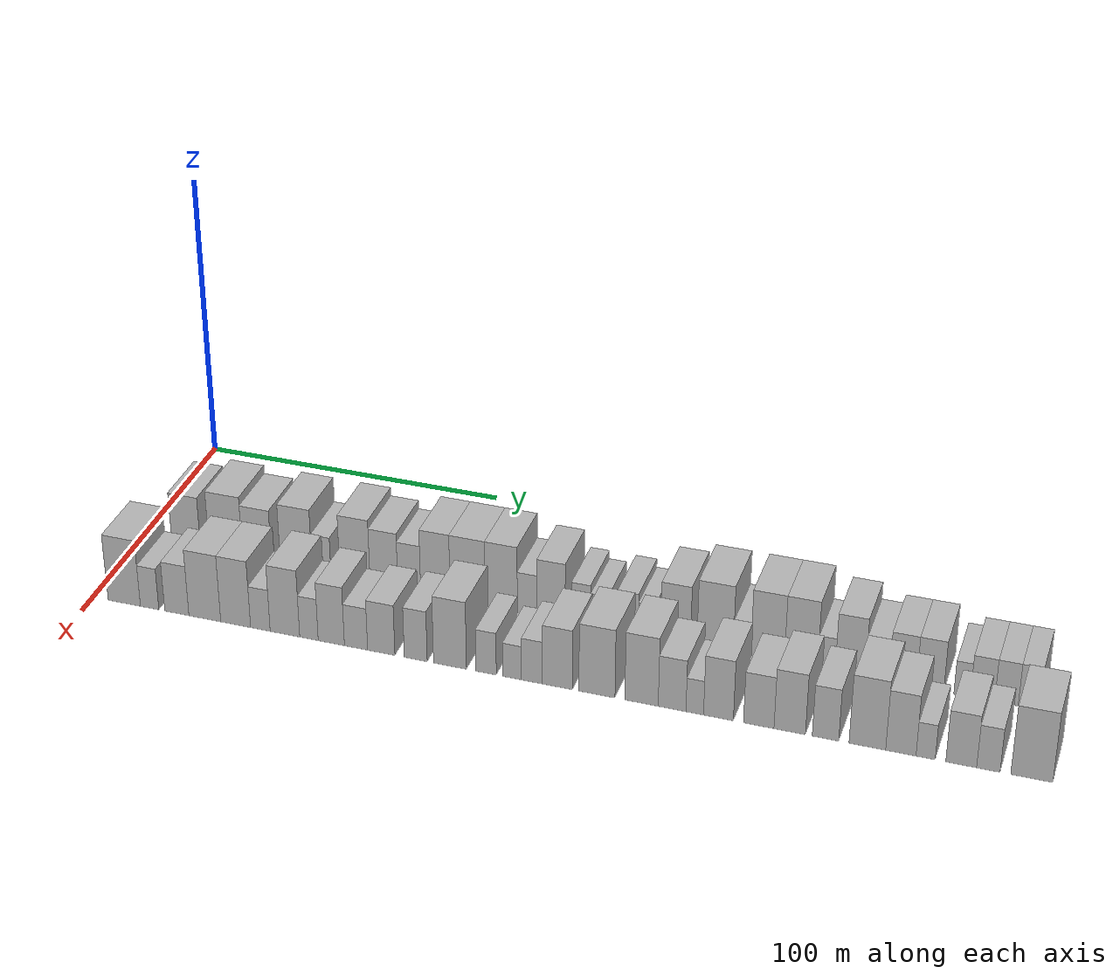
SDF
<sdf version="1.6">
 <world name="default">
  <model name="building_31">
   <static>1</static>
   <pose>50.0000 16.7723 0 0.000000 0.000000 0.000000</pose>
   <link name="link">
    <pose>0 0 10.50 0 0 0</pose>
    <collision name="collision"><geometry><box><size>20.0000 9.9033 21.0000</size></box></geometry></collision>
    <visual name="visual">
     <cast_shadows>0</cast_shadows>
     <geometry><box><size>20.0000 9.9033 21.0000</size></box></geometry>
     <material>
      <script>
       <uri>model://HANNAS_wall/materials/scripts</uri>
       <uri>model://HANNAS_wall/materials/textures</uri>
       <name>vrc/HANNAS_wall</name>
      </script>
     </material>
    </visual>
   </link>
  </model>
  <model name="building_32">
   <static>1</static>
   <pose>50.0000 30.4309 0 0.000000 0.000000 0.000000</pose>
   <link name="link">
    <pose>0 0 12.00 0 0 0</pose>
    <collision name="collision"><geometry><box><size>20.0000 11.4141 24.0000</size></box></geometry></collision>
    <visual name="visual">
     <cast_shadows>0</cast_shadows>
     <geometry><box><size>20.0000 11.4141 24.0000</size></box></geometry>
     <material>
      <script>
       <uri>model://HANNAS_wall/materials/scripts</uri>
       <uri>model://HANNAS_wall/materials/textures</uri>
       <name>vrc/HANNAS_wall</name>
      </script>
     </material>
    </visual>
   </link>
  </model>
  <model name="building_33">
   <static>1</static>
   <pose>50.0000 41.0678 0 0.000000 0.000000 0.000000</pose>
   <link name="link">
    <pose>0 0 10.50 0 0 0</pose>
    <collision name="collision"><geometry><box><size>20.0000 9.8596 21.0000</size></box></geometry></collision>
    <visual name="visual">
     <cast_shadows>0</cast_shadows>
     <geometry><box><size>20.0000 9.8596 21.0000</size></box></geometry>
     <material>
      <script>
       <uri>model://HANNAS_wall/materials/scripts</uri>
       <uri>model://HANNAS_wall/materials/textures</uri>
       <name>vrc/HANNAS_wall</name>
      </script>
     </material>
    </visual>
   </link>
  </model>
  <model name="building_34">
   <static>1</static>
   <pose>50.0000 54.3550 0 0.000000 0.000000 0.000000</pose>
   <link name="link">
    <pose>0 0 12.00 0 0 0</pose>
    <collision name="collision"><geometry><box><size>20.0000 10.7149 24.0000</size></box></geometry></collision>
    <visual name="visual">
     <cast_shadows>0</cast_shadows>
     <geometry><box><size>20.0000 10.7149 24.0000</size></box></geometry>
     <material>
      <script>
       <uri>model://HANNAS_wall/materials/scripts</uri>
       <uri>model://HANNAS_wall/materials/textures</uri>
       <name>vrc/HANNAS_wall</name>
      </script>
     </material>
    </visual>
   </link>
  </model>
  <model name="building_35">
   <static>1</static>
   <pose>50.0000 62.8601 0 0.000000 0.000000 0.000000</pose>
   <link name="link">
    <pose>0 0 7.50 0 0 0</pose>
    <collision name="collision"><geometry><box><size>20.0000 6.2953 15.0000</size></box></geometry></collision>
    <visual name="visual">
     <cast_shadows>0</cast_shadows>
     <geometry><box><size>20.0000 6.2953 15.0000</size></box></geometry>
     <material>
      <script>
       <uri>model://HANNAS_wall/materials/scripts</uri>
       <uri>model://HANNAS_wall/materials/textures</uri>
       <name>vrc/HANNAS_wall</name>
      </script>
     </material>
    </visual>
   </link>
  </model>
  <model name="building_36">
   <static>1</static>
   <pose>50.0000 74.0234 0 0.000000 0.000000 0.000000</pose>
   <link name="link">
    <pose>0 0 12.00 0 0 0</pose>
    <collision name="collision"><geometry><box><size>20.0000 10.0312 24.0000</size></box></geometry></collision>
    <visual name="visual">
     <cast_shadows>0</cast_shadows>
     <geometry><box><size>20.0000 10.0312 24.0000</size></box></geometry>
     <material>
      <script>
       <uri>model://HANNAS_wall/materials/scripts</uri>
       <uri>model://HANNAS_wall/materials/textures</uri>
       <name>vrc/HANNAS_wall</name>
      </script>
     </material>
    </visual>
   </link>
  </model>
  <model name="building_37">
   <static>1</static>
   <pose>50.0000 83.6397 0 0.000000 0.000000 0.000000</pose>
   <link name="link">
    <pose>0 0 10.50 0 0 0</pose>
    <collision name="collision"><geometry><box><size>20.0000 9.2015 21.0000</size></box></geometry></collision>
    <visual name="visual">
     <cast_shadows>0</cast_shadows>
     <geometry><box><size>20.0000 9.2015 21.0000</size></box></geometry>
     <material>
      <script>
       <uri>model://HANNAS_wall/materials/scripts</uri>
       <uri>model://HANNAS_wall/materials/textures</uri>
       <name>vrc/HANNAS_wall</name>
      </script>
     </material>
    </visual>
   </link>
  </model>
  <model name="building_38">
   <static>1</static>
   <pose>50.0000 92.0039 0 0.000000 0.000000 0.000000</pose>
   <link name="link">
    <pose>0 0 9.00 0 0 0</pose>
    <collision name="collision"><geometry><box><size>20.0000 7.5267 18.0000</size></box></geometry></collision>
    <visual name="visual">
     <cast_shadows>0</cast_shadows>
     <geometry><box><size>20.0000 7.5267 18.0000</size></box></geometry>
     <material>
      <script>
       <uri>model://HANNAS_wall/materials/scripts</uri>
       <uri>model://HANNAS_wall/materials/textures</uri>
       <name>vrc/HANNAS_wall</name>
      </script>
     </material>
    </visual>
   </link>
  </model>
  <model name="building_39">
   <static>1</static>
   <pose>50.0000 100.5890 0 0.000000 0.000000 0.000000</pose>
   <link name="link">
    <pose>0 0 12.00 0 0 0</pose>
    <collision name="collision"><geometry><box><size>20.0000 9.6436 24.0000</size></box></geometry></collision>
    <visual name="visual">
     <cast_shadows>0</cast_shadows>
     <geometry><box><size>20.0000 9.6436 24.0000</size></box></geometry>
     <material>
      <script>
       <uri>model://HANNAS_wall/materials/scripts</uri>
       <uri>model://HANNAS_wall/materials/textures</uri>
       <name>vrc/HANNAS_wall</name>
      </script>
     </material>
    </visual>
   </link>
  </model>
  <model name="building_40">
   <static>1</static>
   <pose>50.0000 111.1085 0 0.000000 0.000000 0.000000</pose>
   <link name="link">
    <pose>0 0 12.00 0 0 0</pose>
    <collision name="collision"><geometry><box><size>20.0000 11.3954 24.0000</size></box></geometry></collision>
    <visual name="visual">
     <cast_shadows>0</cast_shadows>
     <geometry><box><size>20.0000 11.3954 24.0000</size></box></geometry>
     <material>
      <script>
       <uri>model://HANNAS_wall/materials/scripts</uri>
       <uri>model://HANNAS_wall/materials/textures</uri>
       <name>vrc/HANNAS_wall</name>
      </script>
     </material>
    </visual>
   </link>
  </model>
  <model name="building_41">
   <static>1</static>
   <pose>50.0000 122.0105 0 0.000000 0.000000 0.000000</pose>
   <link name="link">
    <pose>0 0 12.00 0 0 0</pose>
    <collision name="collision"><geometry><box><size>20.0000 10.4088 24.0000</size></box></geometry></collision>
    <visual name="visual">
     <cast_shadows>0</cast_shadows>
     <geometry><box><size>20.0000 10.4088 24.0000</size></box></geometry>
     <material>
      <script>
       <uri>model://HANNAS_wall/materials/scripts</uri>
       <uri>model://HANNAS_wall/materials/textures</uri>
       <name>vrc/HANNAS_wall</name>
      </script>
     </material>
    </visual>
   </link>
  </model>
  <model name="building_42">
   <static>1</static>
   <pose>50.0000 130.3506 0 0.000000 0.000000 0.000000</pose>
   <link name="link">
    <pose>0 0 7.50 0 0 0</pose>
    <collision name="collision"><geometry><box><size>20.0000 6.2713 15.0000</size></box></geometry></collision>
    <visual name="visual">
     <cast_shadows>0</cast_shadows>
     <geometry><box><size>20.0000 6.2713 15.0000</size></box></geometry>
     <material>
      <script>
       <uri>model://HANNAS_wall/materials/scripts</uri>
       <uri>model://HANNAS_wall/materials/textures</uri>
       <name>vrc/HANNAS_wall</name>
      </script>
     </material>
    </visual>
   </link>
  </model>
  <model name="building_43">
   <static>1</static>
   <pose>50.0000 137.9851 0 0.000000 0.000000 0.000000</pose>
   <link name="link">
    <pose>0 0 10.50 0 0 0</pose>
    <collision name="collision"><geometry><box><size>20.0000 8.9977 21.0000</size></box></geometry></collision>
    <visual name="visual">
     <cast_shadows>0</cast_shadows>
     <geometry><box><size>20.0000 8.9977 21.0000</size></box></geometry>
     <material>
      <script>
       <uri>model://HANNAS_wall/materials/scripts</uri>
       <uri>model://HANNAS_wall/materials/textures</uri>
       <name>vrc/HANNAS_wall</name>
      </script>
     </material>
    </visual>
   </link>
  </model>
  <model name="building_44">
   <static>1</static>
   <pose>50.0000 147.4959 0 0.000000 0.000000 0.000000</pose>
   <link name="link">
    <pose>0 0 7.50 0 0 0</pose>
    <collision name="collision"><geometry><box><size>20.0000 6.0239 15.0000</size></box></geometry></collision>
    <visual name="visual">
     <cast_shadows>0</cast_shadows>
     <geometry><box><size>20.0000 6.0239 15.0000</size></box></geometry>
     <material>
      <script>
       <uri>model://HANNAS_wall/materials/scripts</uri>
       <uri>model://HANNAS_wall/materials/textures</uri>
       <name>vrc/HANNAS_wall</name>
      </script>
     </material>
    </visual>
   </link>
  </model>
  <model name="building_45">
   <static>1</static>
   <pose>50.0000 153.2212 0 0.000000 0.000000 0.000000</pose>
   <link name="link">
    <pose>0 0 6.00 0 0 0</pose>
    <collision name="collision"><geometry><box><size>20.0000 5.4267 12.0000</size></box></geometry></collision>
    <visual name="visual">
     <cast_shadows>0</cast_shadows>
     <geometry><box><size>20.0000 5.4267 12.0000</size></box></geometry>
     <material>
      <script>
       <uri>model://HANNAS_wall/materials/scripts</uri>
       <uri>model://HANNAS_wall/materials/textures</uri>
       <name>vrc/HANNAS_wall</name>
      </script>
     </material>
    </visual>
   </link>
  </model>
  <model name="building_46">
   <static>1</static>
   <pose>50.0000 162.2560 0 0.000000 0.000000 0.000000</pose>
   <link name="link">
    <pose>0 0 7.50 0 0 0</pose>
    <collision name="collision"><geometry><box><size>20.0000 6.6430 15.0000</size></box></geometry></collision>
    <visual name="visual">
     <cast_shadows>0</cast_shadows>
     <geometry><box><size>20.0000 6.6430 15.0000</size></box></geometry>
     <material>
      <script>
       <uri>model://HANNAS_wall/materials/scripts</uri>
       <uri>model://HANNAS_wall/materials/textures</uri>
       <name>vrc/HANNAS_wall</name>
      </script>
     </material>
    </visual>
   </link>
  </model>
  <model name="building_47">
   <static>1</static>
   <pose>50.0000 168.0989 0 0.000000 0.000000 0.000000</pose>
   <link name="link">
    <pose>0 0 6.00 0 0 0</pose>
    <collision name="collision"><geometry><box><size>20.0000 5.0428 12.0000</size></box></geometry></collision>
    <visual name="visual">
     <cast_shadows>0</cast_shadows>
     <geometry><box><size>20.0000 5.0428 12.0000</size></box></geometry>
     <material>
      <script>
       <uri>model://HANNAS_wall/materials/scripts</uri>
       <uri>model://HANNAS_wall/materials/textures</uri>
       <name>vrc/HANNAS_wall</name>
      </script>
     </material>
    </visual>
   </link>
  </model>
  <model name="building_48">
   <static>1</static>
   <pose>50.0000 177.2669 0 0.000000 0.000000 0.000000</pose>
   <link name="link">
    <pose>0 0 10.50 0 0 0</pose>
    <collision name="collision"><geometry><box><size>20.0000 9.2932 21.0000</size></box></geometry></collision>
    <visual name="visual">
     <cast_shadows>0</cast_shadows>
     <geometry><box><size>20.0000 9.2932 21.0000</size></box></geometry>
     <material>
      <script>
       <uri>model://HANNAS_wall/materials/scripts</uri>
       <uri>model://HANNAS_wall/materials/textures</uri>
       <name>vrc/HANNAS_wall</name>
      </script>
     </material>
    </visual>
   </link>
  </model>
  <model name="building_49">
   <static>1</static>
   <pose>50.0000 189.5027 0 0.000000 0.000000 0.000000</pose>
   <link name="link">
    <pose>0 0 12.00 0 0 0</pose>
    <collision name="collision"><geometry><box><size>20.0000 11.1784 24.0000</size></box></geometry></collision>
    <visual name="visual">
     <cast_shadows>0</cast_shadows>
     <geometry><box><size>20.0000 11.1784 24.0000</size></box></geometry>
     <material>
      <script>
       <uri>model://HANNAS_wall/materials/scripts</uri>
       <uri>model://HANNAS_wall/materials/textures</uri>
       <name>vrc/HANNAS_wall</name>
      </script>
     </material>
    </visual>
   </link>
  </model>
  <model name="building_50">
   <static>1</static>
   <pose>50.0000 197.7847 0 0.000000 0.000000 0.000000</pose>
   <link name="link">
    <pose>0 0 6.00 0 0 0</pose>
    <collision name="collision"><geometry><box><size>20.0000 5.3856 12.0000</size></box></geometry></collision>
    <visual name="visual">
     <cast_shadows>0</cast_shadows>
     <geometry><box><size>20.0000 5.3856 12.0000</size></box></geometry>
     <material>
      <script>
       <uri>model://HANNAS_wall/materials/scripts</uri>
       <uri>model://HANNAS_wall/materials/textures</uri>
       <name>vrc/HANNAS_wall</name>
      </script>
     </material>
    </visual>
   </link>
  </model>
  <model name="building_51">
   <static>1</static>
   <pose>50.0000 205.6232 0 0.000000 0.000000 0.000000</pose>
   <link name="link">
    <pose>0 0 12.00 0 0 0</pose>
    <collision name="collision"><geometry><box><size>20.0000 10.2915 24.0000</size></box></geometry></collision>
    <visual name="visual">
     <cast_shadows>0</cast_shadows>
     <geometry><box><size>20.0000 10.2915 24.0000</size></box></geometry>
     <material>
      <script>
       <uri>model://HANNAS_wall/materials/scripts</uri>
       <uri>model://HANNAS_wall/materials/textures</uri>
       <name>vrc/HANNAS_wall</name>
      </script>
     </material>
    </visual>
   </link>
  </model>
  <model name="building_52">
   <static>1</static>
   <pose>50.0000 215.8023 0 0.000000 0.000000 0.000000</pose>
   <link name="link">
    <pose>0 0 12.00 0 0 0</pose>
    <collision name="collision"><geometry><box><size>20.0000 10.0666 24.0000</size></box></geometry></collision>
    <visual name="visual">
     <cast_shadows>0</cast_shadows>
     <geometry><box><size>20.0000 10.0666 24.0000</size></box></geometry>
     <material>
      <script>
       <uri>model://HANNAS_wall/materials/scripts</uri>
       <uri>model://HANNAS_wall/materials/textures</uri>
       <name>vrc/HANNAS_wall</name>
      </script>
     </material>
    </visual>
   </link>
  </model>
  <model name="building_53">
   <static>1</static>
   <pose>50.0000 223.4891 0 0.000000 0.000000 0.000000</pose>
   <link name="link">
    <pose>0 0 6.00 0 0 0</pose>
    <collision name="collision"><geometry><box><size>20.0000 5.3071 12.0000</size></box></geometry></collision>
    <visual name="visual">
     <cast_shadows>0</cast_shadows>
     <geometry><box><size>20.0000 5.3071 12.0000</size></box></geometry>
     <material>
      <script>
       <uri>model://HANNAS_wall/materials/scripts</uri>
       <uri>model://HANNAS_wall/materials/textures</uri>
       <name>vrc/HANNAS_wall</name>
      </script>
     </material>
    </visual>
   </link>
  </model>
  <model name="building_54">
   <static>1</static>
   <pose>50.0000 230.6650 0 0.000000 0.000000 0.000000</pose>
   <link name="link">
    <pose>0 0 10.50 0 0 0</pose>
    <collision name="collision"><geometry><box><size>20.0000 9.0448 21.0000</size></box></geometry></collision>
    <visual name="visual">
     <cast_shadows>0</cast_shadows>
     <geometry><box><size>20.0000 9.0448 21.0000</size></box></geometry>
     <material>
      <script>
       <uri>model://HANNAS_wall/materials/scripts</uri>
       <uri>model://HANNAS_wall/materials/textures</uri>
       <name>vrc/HANNAS_wall</name>
      </script>
     </material>
    </visual>
   </link>
  </model>
  <model name="building_55">
   <static>1</static>
   <pose>50.0000 238.7319 0 0.000000 0.000000 0.000000</pose>
   <link name="link">
    <pose>0 0 7.50 0 0 0</pose>
    <collision name="collision"><geometry><box><size>20.0000 7.0890 15.0000</size></box></geometry></collision>
    <visual name="visual">
     <cast_shadows>0</cast_shadows>
     <geometry><box><size>20.0000 7.0890 15.0000</size></box></geometry>
     <material>
      <script>
       <uri>model://HANNAS_wall/materials/scripts</uri>
       <uri>model://HANNAS_wall/materials/textures</uri>
       <name>vrc/HANNAS_wall</name>
      </script>
     </material>
    </visual>
   </link>
  </model>
  <model name="building_56">
   <static>1</static>
   <pose>50.0000 246.3394 0 0.000000 0.000000 0.000000</pose>
   <link name="link">
    <pose>0 0 9.00 0 0 0</pose>
    <collision name="collision"><geometry><box><size>20.0000 8.1259 18.0000</size></box></geometry></collision>
    <visual name="visual">
     <cast_shadows>0</cast_shadows>
     <geometry><box><size>20.0000 8.1259 18.0000</size></box></geometry>
     <material>
      <script>
       <uri>model://HANNAS_wall/materials/scripts</uri>
       <uri>model://HANNAS_wall/materials/textures</uri>
       <name>vrc/HANNAS_wall</name>
      </script>
     </material>
    </visual>
   </link>
  </model>
  <model name="building_57">
   <static>1</static>
   <pose>50.0000 254.4463 0 0.000000 0.000000 0.000000</pose>
   <link name="link">
    <pose>0 0 9.00 0 0 0</pose>
    <collision name="collision"><geometry><box><size>20.0000 8.0880 18.0000</size></box></geometry></collision>
    <visual name="visual">
     <cast_shadows>0</cast_shadows>
     <geometry><box><size>20.0000 8.0880 18.0000</size></box></geometry>
     <material>
      <script>
       <uri>model://HANNAS_wall/materials/scripts</uri>
       <uri>model://HANNAS_wall/materials/textures</uri>
       <name>vrc/HANNAS_wall</name>
      </script>
     </material>
    </visual>
   </link>
  </model>
  <model name="building_58">
   <static>1</static>
   <pose>50.0000 263.9128 0 0.000000 0.000000 0.000000</pose>
   <link name="link">
    <pose>0 0 6.00 0 0 0</pose>
    <collision name="collision"><geometry><box><size>20.0000 4.8451 12.0000</size></box></geometry></collision>
    <visual name="visual">
     <cast_shadows>0</cast_shadows>
     <geometry><box><size>20.0000 4.8451 12.0000</size></box></geometry>
     <material>
      <script>
       <uri>model://HANNAS_wall/materials/scripts</uri>
       <uri>model://HANNAS_wall/materials/textures</uri>
       <name>vrc/HANNAS_wall</name>
      </script>
     </material>
    </visual>
   </link>
  </model>
  <model name="building_59">
   <static>1</static>
   <pose>50.0000 269.8846 0 0.000000 0.000000 0.000000</pose>
   <link name="link">
    <pose>0 0 7.50 0 0 0</pose>
    <collision name="collision"><geometry><box><size>20.0000 7.0984 15.0000</size></box></geometry></collision>
    <visual name="visual">
     <cast_shadows>0</cast_shadows>
     <geometry><box><size>20.0000 7.0984 15.0000</size></box></geometry>
     <material>
      <script>
       <uri>model://HANNAS_wall/materials/scripts</uri>
       <uri>model://HANNAS_wall/materials/textures</uri>
       <name>vrc/HANNAS_wall</name>
      </script>
     </material>
    </visual>
   </link>
  </model>
  <model name="building_60">
   <static>1</static>
   <pose>50.0000 276.8553 0 0.000000 0.000000 0.000000</pose>
   <link name="link">
    <pose>0 0 7.50 0 0 0</pose>
    <collision name="collision"><geometry><box><size>20.0000 6.8430 15.0000</size></box></geometry></collision>
    <visual name="visual">
     <cast_shadows>0</cast_shadows>
     <geometry><box><size>20.0000 6.8430 15.0000</size></box></geometry>
     <material>
      <script>
       <uri>model://HANNAS_wall/materials/scripts</uri>
       <uri>model://HANNAS_wall/materials/textures</uri>
       <name>vrc/HANNAS_wall</name>
      </script>
     </material>
    </visual>
   </link>
  </model>
  <model name="building_61">
   <static>1</static>
   <pose>50.0000 283.3969 0 0.000000 0.000000 0.000000</pose>
   <link name="link">
    <pose>0 0 7.50 0 0 0</pose>
    <collision name="collision"><geometry><box><size>20.0000 6.2404 15.0000</size></box></geometry></collision>
    <visual name="visual">
     <cast_shadows>0</cast_shadows>
     <geometry><box><size>20.0000 6.2404 15.0000</size></box></geometry>
     <material>
      <script>
       <uri>model://HANNAS_wall/materials/scripts</uri>
       <uri>model://HANNAS_wall/materials/textures</uri>
       <name>vrc/HANNAS_wall</name>
      </script>
     </material>
    </visual>
   </link>
  </model>
  <model name="building_94">
   <static>1</static>
   <pose>82.0000 10.4986 0 0.000000 0.000000 0.000000</pose>
   <link name="link">
    <pose>0 0 12.00 0 0 0</pose>
    <collision name="collision"><geometry><box><size>20.0000 10.9033 24.0000</size></box></geometry></collision>
    <visual name="visual">
     <cast_shadows>0</cast_shadows>
     <geometry><box><size>20.0000 10.9033 24.0000</size></box></geometry>
     <material>
      <script>
       <uri>model://HANNAS_wall/materials/scripts</uri>
       <uri>model://HANNAS_wall/materials/textures</uri>
       <name>vrc/HANNAS_wall</name>
      </script>
     </material>
    </visual>
   </link>
  </model>
  <model name="building_95">
   <static>1</static>
   <pose>82.0000 19.0411 0 0.000000 0.000000 0.000000</pose>
   <link name="link">
    <pose>0 0 7.50 0 0 0</pose>
    <collision name="collision"><geometry><box><size>20.0000 6.1817 15.0000</size></box></geometry></collision>
    <visual name="visual">
     <cast_shadows>0</cast_shadows>
     <geometry><box><size>20.0000 6.1817 15.0000</size></box></geometry>
     <material>
      <script>
       <uri>model://HANNAS_wall/materials/scripts</uri>
       <uri>model://HANNAS_wall/materials/textures</uri>
       <name>vrc/HANNAS_wall</name>
      </script>
     </material>
    </visual>
   </link>
  </model>
  <model name="building_96">
   <static>1</static>
   <pose>82.0000 28.1585 0 0.000000 0.000000 0.000000</pose>
   <link name="link">
    <pose>0 0 9.00 0 0 0</pose>
    <collision name="collision"><geometry><box><size>20.0000 8.0532 18.0000</size></box></geometry></collision>
    <visual name="visual">
     <cast_shadows>0</cast_shadows>
     <geometry><box><size>20.0000 8.0532 18.0000</size></box></geometry>
     <material>
      <script>
       <uri>model://HANNAS_wall/materials/scripts</uri>
       <uri>model://HANNAS_wall/materials/textures</uri>
       <name>vrc/HANNAS_wall</name>
      </script>
     </material>
    </visual>
   </link>
  </model>
  <model name="building_97">
   <static>1</static>
   <pose>82.0000 37.4785 0 0.000000 0.000000 0.000000</pose>
   <link name="link">
    <pose>0 0 12.00 0 0 0</pose>
    <collision name="collision"><geometry><box><size>20.0000 10.5867 24.0000</size></box></geometry></collision>
    <visual name="visual">
     <cast_shadows>0</cast_shadows>
     <geometry><box><size>20.0000 10.5867 24.0000</size></box></geometry>
     <material>
      <script>
       <uri>model://HANNAS_wall/materials/scripts</uri>
       <uri>model://HANNAS_wall/materials/textures</uri>
       <name>vrc/HANNAS_wall</name>
      </script>
     </material>
    </visual>
   </link>
  </model>
  <model name="building_98">
   <static>1</static>
   <pose>82.0000 47.6969 0 0.000000 0.000000 0.000000</pose>
   <link name="link">
    <pose>0 0 12.00 0 0 0</pose>
    <collision name="collision"><geometry><box><size>20.0000 9.8502 24.0000</size></box></geometry></collision>
    <visual name="visual">
     <cast_shadows>0</cast_shadows>
     <geometry><box><size>20.0000 9.8502 24.0000</size></box></geometry>
     <material>
      <script>
       <uri>model://HANNAS_wall/materials/scripts</uri>
       <uri>model://HANNAS_wall/materials/textures</uri>
       <name>vrc/HANNAS_wall</name>
      </script>
     </material>
    </visual>
   </link>
  </model>
  <model name="building_99">
   <static>1</static>
   <pose>82.0000 55.8302 0 0.000000 0.000000 0.000000</pose>
   <link name="link">
    <pose>0 0 7.50 0 0 0</pose>
    <collision name="collision"><geometry><box><size>20.0000 6.4164 15.0000</size></box></geometry></collision>
    <visual name="visual">
     <cast_shadows>0</cast_shadows>
     <geometry><box><size>20.0000 6.4164 15.0000</size></box></geometry>
     <material>
      <script>
       <uri>model://HANNAS_wall/materials/scripts</uri>
       <uri>model://HANNAS_wall/materials/textures</uri>
       <name>vrc/HANNAS_wall</name>
      </script>
     </material>
    </visual>
   </link>
  </model>
  <model name="building_100">
   <static>1</static>
   <pose>82.0000 63.8622 0 0.000000 0.000000 0.000000</pose>
   <link name="link">
    <pose>0 0 12.00 0 0 0</pose>
    <collision name="collision"><geometry><box><size>20.0000 9.6475 24.0000</size></box></geometry></collision>
    <visual name="visual">
     <cast_shadows>0</cast_shadows>
     <geometry><box><size>20.0000 9.6475 24.0000</size></box></geometry>
     <material>
      <script>
       <uri>model://HANNAS_wall/materials/scripts</uri>
       <uri>model://HANNAS_wall/materials/textures</uri>
       <name>vrc/HANNAS_wall</name>
      </script>
     </material>
    </visual>
   </link>
  </model>
  <model name="building_101">
   <static>1</static>
   <pose>82.0000 71.6861 0 0.000000 0.000000 0.000000</pose>
   <link name="link">
    <pose>0 0 7.50 0 0 0</pose>
    <collision name="collision"><geometry><box><size>20.0000 6.0005 15.0000</size></box></geometry></collision>
    <visual name="visual">
     <cast_shadows>0</cast_shadows>
     <geometry><box><size>20.0000 6.0005 15.0000</size></box></geometry>
     <material>
      <script>
       <uri>model://HANNAS_wall/materials/scripts</uri>
       <uri>model://HANNAS_wall/materials/textures</uri>
       <name>vrc/HANNAS_wall</name>
      </script>
     </material>
    </visual>
   </link>
  </model>
  <model name="building_102">
   <static>1</static>
   <pose>82.0000 78.9264 0 0.000000 0.000000 0.000000</pose>
   <link name="link">
    <pose>0 0 10.50 0 0 0</pose>
    <collision name="collision"><geometry><box><size>20.0000 8.4801 21.0000</size></box></geometry></collision>
    <visual name="visual">
     <cast_shadows>0</cast_shadows>
     <geometry><box><size>20.0000 8.4801 21.0000</size></box></geometry>
     <material>
      <script>
       <uri>model://HANNAS_wall/materials/scripts</uri>
       <uri>model://HANNAS_wall/materials/textures</uri>
       <name>vrc/HANNAS_wall</name>
      </script>
     </material>
    </visual>
   </link>
  </model>
  <model name="building_103">
   <static>1</static>
   <pose>82.0000 86.8939 0 0.000000 0.000000 0.000000</pose>
   <link name="link">
    <pose>0 0 7.50 0 0 0</pose>
    <collision name="collision"><geometry><box><size>20.0000 7.4548 15.0000</size></box></geometry></collision>
    <visual name="visual">
     <cast_shadows>0</cast_shadows>
     <geometry><box><size>20.0000 7.4548 15.0000</size></box></geometry>
     <material>
      <script>
       <uri>model://HANNAS_wall/materials/scripts</uri>
       <uri>model://HANNAS_wall/materials/textures</uri>
       <name>vrc/HANNAS_wall</name>
      </script>
     </material>
    </visual>
   </link>
  </model>
  <model name="building_104">
   <static>1</static>
   <pose>82.0000 94.9788 0 0.000000 0.000000 0.000000</pose>
   <link name="link">
    <pose>0 0 9.00 0 0 0</pose>
    <collision name="collision"><geometry><box><size>20.0000 8.7151 18.0000</size></box></geometry></collision>
    <visual name="visual">
     <cast_shadows>0</cast_shadows>
     <geometry><box><size>20.0000 8.7151 18.0000</size></box></geometry>
     <material>
      <script>
       <uri>model://HANNAS_wall/materials/scripts</uri>
       <uri>model://HANNAS_wall/materials/textures</uri>
       <name>vrc/HANNAS_wall</name>
      </script>
     </material>
    </visual>
   </link>
  </model>
  <model name="building_105">
   <static>1</static>
   <pose>82.0000 105.9683 0 0.000000 0.000000 0.000000</pose>
   <link name="link">
    <pose>0 0 9.00 0 0 0</pose>
    <collision name="collision"><geometry><box><size>20.0000 7.2640 18.0000</size></box></geometry></collision>
    <visual name="visual">
     <cast_shadows>0</cast_shadows>
     <geometry><box><size>20.0000 7.2640 18.0000</size></box></geometry>
     <material>
      <script>
       <uri>model://HANNAS_wall/materials/scripts</uri>
       <uri>model://HANNAS_wall/materials/textures</uri>
       <name>vrc/HANNAS_wall</name>
      </script>
     </material>
    </visual>
   </link>
  </model>
  <model name="building_106">
   <static>1</static>
   <pose>82.0000 116.7891 0 0.000000 0.000000 0.000000</pose>
   <link name="link">
    <pose>0 0 12.00 0 0 0</pose>
    <collision name="collision"><geometry><box><size>20.0000 10.3775 24.0000</size></box></geometry></collision>
    <visual name="visual">
     <cast_shadows>0</cast_shadows>
     <geometry><box><size>20.0000 10.3775 24.0000</size></box></geometry>
     <material>
      <script>
       <uri>model://HANNAS_wall/materials/scripts</uri>
       <uri>model://HANNAS_wall/materials/textures</uri>
       <name>vrc/HANNAS_wall</name>
      </script>
     </material>
    </visual>
   </link>
  </model>
  <model name="building_107">
   <static>1</static>
   <pose>82.0000 128.1389 0 0.000000 0.000000 0.000000</pose>
   <link name="link">
    <pose>0 0 7.50 0 0 0</pose>
    <collision name="collision"><geometry><box><size>20.0000 6.3220 15.0000</size></box></geometry></collision>
    <visual name="visual">
     <cast_shadows>0</cast_shadows>
     <geometry><box><size>20.0000 6.3220 15.0000</size></box></geometry>
     <material>
      <script>
       <uri>model://HANNAS_wall/materials/scripts</uri>
       <uri>model://HANNAS_wall/materials/textures</uri>
       <name>vrc/HANNAS_wall</name>
      </script>
     </material>
    </visual>
   </link>
  </model>
  <model name="building_108">
   <static>1</static>
   <pose>82.0000 136.2140 0 0.000000 0.000000 0.000000</pose>
   <link name="link">
    <pose>0 0 6.00 0 0 0</pose>
    <collision name="collision"><geometry><box><size>20.0000 5.8283 12.0000</size></box></geometry></collision>
    <visual name="visual">
     <cast_shadows>0</cast_shadows>
     <geometry><box><size>20.0000 5.8283 12.0000</size></box></geometry>
     <material>
      <script>
       <uri>model://HANNAS_wall/materials/scripts</uri>
       <uri>model://HANNAS_wall/materials/textures</uri>
       <name>vrc/HANNAS_wall</name>
      </script>
     </material>
    </visual>
   </link>
  </model>
  <model name="building_109">
   <static>1</static>
   <pose>82.0000 142.3677 0 0.000000 0.000000 0.000000</pose>
   <link name="link">
    <pose>0 0 7.50 0 0 0</pose>
    <collision name="collision"><geometry><box><size>20.0000 6.4791 15.0000</size></box></geometry></collision>
    <visual name="visual">
     <cast_shadows>0</cast_shadows>
     <geometry><box><size>20.0000 6.4791 15.0000</size></box></geometry>
     <material>
      <script>
       <uri>model://HANNAS_wall/materials/scripts</uri>
       <uri>model://HANNAS_wall/materials/textures</uri>
       <name>vrc/HANNAS_wall</name>
      </script>
     </material>
    </visual>
   </link>
  </model>
  <model name="building_110">
   <static>1</static>
   <pose>82.0000 150.2061 0 0.000000 0.000000 0.000000</pose>
   <link name="link">
    <pose>0 0 10.50 0 0 0</pose>
    <collision name="collision"><geometry><box><size>20.0000 9.1978 21.0000</size></box></geometry></collision>
    <visual name="visual">
     <cast_shadows>0</cast_shadows>
     <geometry><box><size>20.0000 9.1978 21.0000</size></box></geometry>
     <material>
      <script>
       <uri>model://HANNAS_wall/materials/scripts</uri>
       <uri>model://HANNAS_wall/materials/textures</uri>
       <name>vrc/HANNAS_wall</name>
      </script>
     </material>
    </visual>
   </link>
  </model>
  <model name="building_111">
   <static>1</static>
   <pose>82.0000 162.3060 0 0.000000 0.000000 0.000000</pose>
   <link name="link">
    <pose>0 0 12.00 0 0 0</pose>
    <collision name="collision"><geometry><box><size>20.0000 11.0021 24.0000</size></box></geometry></collision>
    <visual name="visual">
     <cast_shadows>0</cast_shadows>
     <geometry><box><size>20.0000 11.0021 24.0000</size></box></geometry>
     <material>
      <script>
       <uri>model://HANNAS_wall/materials/scripts</uri>
       <uri>model://HANNAS_wall/materials/textures</uri>
       <name>vrc/HANNAS_wall</name>
      </script>
     </material>
    </visual>
   </link>
  </model>
  <model name="building_112">
   <static>1</static>
   <pose>82.0000 175.8475 0 0.000000 0.000000 0.000000</pose>
   <link name="link">
    <pose>0 0 12.00 0 0 0</pose>
    <collision name="collision"><geometry><box><size>20.0000 10.0810 24.0000</size></box></geometry></collision>
    <visual name="visual">
     <cast_shadows>0</cast_shadows>
     <geometry><box><size>20.0000 10.0810 24.0000</size></box></geometry>
     <material>
      <script>
       <uri>model://HANNAS_wall/materials/scripts</uri>
       <uri>model://HANNAS_wall/materials/textures</uri>
       <name>vrc/HANNAS_wall</name>
      </script>
     </material>
    </visual>
   </link>
  </model>
  <model name="building_113">
   <static>1</static>
   <pose>82.0000 185.0491 0 0.000000 0.000000 0.000000</pose>
   <link name="link">
    <pose>0 0 9.00 0 0 0</pose>
    <collision name="collision"><geometry><box><size>20.0000 8.3221 18.0000</size></box></geometry></collision>
    <visual name="visual">
     <cast_shadows>0</cast_shadows>
     <geometry><box><size>20.0000 8.3221 18.0000</size></box></geometry>
     <material>
      <script>
       <uri>model://HANNAS_wall/materials/scripts</uri>
       <uri>model://HANNAS_wall/materials/textures</uri>
       <name>vrc/HANNAS_wall</name>
      </script>
     </material>
    </visual>
   </link>
  </model>
  <model name="building_114">
   <static>1</static>
   <pose>82.0000 191.8374 0 0.000000 0.000000 0.000000</pose>
   <link name="link">
    <pose>0 0 6.00 0 0 0</pose>
    <collision name="collision"><geometry><box><size>20.0000 5.2546 12.0000</size></box></geometry></collision>
    <visual name="visual">
     <cast_shadows>0</cast_shadows>
     <geometry><box><size>20.0000 5.2546 12.0000</size></box></geometry>
     <material>
      <script>
       <uri>model://HANNAS_wall/materials/scripts</uri>
       <uri>model://HANNAS_wall/materials/textures</uri>
       <name>vrc/HANNAS_wall</name>
      </script>
     </material>
    </visual>
   </link>
  </model>
  <model name="building_115">
   <static>1</static>
   <pose>82.0000 198.9002 0 0.000000 0.000000 0.000000</pose>
   <link name="link">
    <pose>0 0 10.50 0 0 0</pose>
    <collision name="collision"><geometry><box><size>20.0000 8.8710 21.0000</size></box></geometry></collision>
    <visual name="visual">
     <cast_shadows>0</cast_shadows>
     <geometry><box><size>20.0000 8.8710 21.0000</size></box></geometry>
     <material>
      <script>
       <uri>model://HANNAS_wall/materials/scripts</uri>
       <uri>model://HANNAS_wall/materials/textures</uri>
       <name>vrc/HANNAS_wall</name>
      </script>
     </material>
    </visual>
   </link>
  </model>
  <model name="building_116">
   <static>1</static>
   <pose>82.0000 210.8275 0 0.000000 0.000000 0.000000</pose>
   <link name="link">
    <pose>0 0 9.00 0 0 0</pose>
    <collision name="collision"><geometry><box><size>20.0000 8.9836 18.0000</size></box></geometry></collision>
    <visual name="visual">
     <cast_shadows>0</cast_shadows>
     <geometry><box><size>20.0000 8.9836 18.0000</size></box></geometry>
     <material>
      <script>
       <uri>model://HANNAS_wall/materials/scripts</uri>
       <uri>model://HANNAS_wall/materials/textures</uri>
       <name>vrc/HANNAS_wall</name>
      </script>
     </material>
    </visual>
   </link>
  </model>
  <model name="building_117">
   <static>1</static>
   <pose>82.0000 219.9238 0 0.000000 0.000000 0.000000</pose>
   <link name="link">
    <pose>0 0 10.50 0 0 0</pose>
    <collision name="collision"><geometry><box><size>20.0000 9.2090 21.0000</size></box></geometry></collision>
    <visual name="visual">
     <cast_shadows>0</cast_shadows>
     <geometry><box><size>20.0000 9.2090 21.0000</size></box></geometry>
     <material>
      <script>
       <uri>model://HANNAS_wall/materials/scripts</uri>
       <uri>model://HANNAS_wall/materials/textures</uri>
       <name>vrc/HANNAS_wall</name>
      </script>
     </material>
    </visual>
   </link>
  </model>
  <model name="building_118">
   <static>1</static>
   <pose>82.0000 230.3708 0 0.000000 0.000000 0.000000</pose>
   <link name="link">
    <pose>0 0 9.00 0 0 0</pose>
    <collision name="collision"><geometry><box><size>20.0000 7.6850 18.0000</size></box></geometry></collision>
    <visual name="visual">
     <cast_shadows>0</cast_shadows>
     <geometry><box><size>20.0000 7.6850 18.0000</size></box></geometry>
     <material>
      <script>
       <uri>model://HANNAS_wall/materials/scripts</uri>
       <uri>model://HANNAS_wall/materials/textures</uri>
       <name>vrc/HANNAS_wall</name>
      </script>
     </material>
    </visual>
   </link>
  </model>
  <model name="building_119">
   <static>1</static>
   <pose>82.0000 242.4876 0 0.000000 0.000000 0.000000</pose>
   <link name="link">
    <pose>0 0 12.00 0 0 0</pose>
    <collision name="collision"><geometry><box><size>20.0000 10.5486 24.0000</size></box></geometry></collision>
    <visual name="visual">
     <cast_shadows>0</cast_shadows>
     <geometry><box><size>20.0000 10.5486 24.0000</size></box></geometry>
     <material>
      <script>
       <uri>model://HANNAS_wall/materials/scripts</uri>
       <uri>model://HANNAS_wall/materials/textures</uri>
       <name>vrc/HANNAS_wall</name>
      </script>
     </material>
    </visual>
   </link>
  </model>
  <model name="building_120">
   <static>1</static>
   <pose>82.0000 252.1056 0 0.000000 0.000000 0.000000</pose>
   <link name="link">
    <pose>0 0 10.50 0 0 0</pose>
    <collision name="collision"><geometry><box><size>20.0000 8.6874 21.0000</size></box></geometry></collision>
    <visual name="visual">
     <cast_shadows>0</cast_shadows>
     <geometry><box><size>20.0000 8.6874 21.0000</size></box></geometry>
     <material>
      <script>
       <uri>model://HANNAS_wall/materials/scripts</uri>
       <uri>model://HANNAS_wall/materials/textures</uri>
       <name>vrc/HANNAS_wall</name>
      </script>
     </material>
    </visual>
   </link>
  </model>
  <model name="building_121">
   <static>1</static>
   <pose>82.0000 259.1838 0 0.000000 0.000000 0.000000</pose>
   <link name="link">
    <pose>0 0 6.00 0 0 0</pose>
    <collision name="collision"><geometry><box><size>20.0000 5.4691 12.0000</size></box></geometry></collision>
    <visual name="visual">
     <cast_shadows>0</cast_shadows>
     <geometry><box><size>20.0000 5.4691 12.0000</size></box></geometry>
     <material>
      <script>
       <uri>model://HANNAS_wall/materials/scripts</uri>
       <uri>model://HANNAS_wall/materials/textures</uri>
       <name>vrc/HANNAS_wall</name>
      </script>
     </material>
    </visual>
   </link>
  </model>
  <model name="building_122">
   <static>1</static>
   <pose>82.0000 269.2720 0 0.000000 0.000000 0.000000</pose>
   <link name="link">
    <pose>0 0 9.00 0 0 0</pose>
    <collision name="collision"><geometry><box><size>20.0000 8.7073 18.0000</size></box></geometry></collision>
    <visual name="visual">
     <cast_shadows>0</cast_shadows>
     <geometry><box><size>20.0000 8.7073 18.0000</size></box></geometry>
     <material>
      <script>
       <uri>model://HANNAS_wall/materials/scripts</uri>
       <uri>model://HANNAS_wall/materials/textures</uri>
       <name>vrc/HANNAS_wall</name>
      </script>
     </material>
    </visual>
   </link>
  </model>
  <model name="building_123">
   <static>1</static>
   <pose>82.0000 276.9245 0 0.000000 0.000000 0.000000</pose>
   <link name="link">
    <pose>0 0 7.50 0 0 0</pose>
    <collision name="collision"><geometry><box><size>20.0000 6.5978 15.0000</size></box></geometry></collision>
    <visual name="visual">
     <cast_shadows>0</cast_shadows>
     <geometry><box><size>20.0000 6.5978 15.0000</size></box></geometry>
     <material>
      <script>
       <uri>model://HANNAS_wall/materials/scripts</uri>
       <uri>model://HANNAS_wall/materials/textures</uri>
       <name>vrc/HANNAS_wall</name>
      </script>
     </material>
    </visual>
   </link>
  </model>
  <model name="building_124">
   <static>1</static>
   <pose>82.0000 289.0837 0 0.000000 0.000000 0.000000</pose>
   <link name="link">
    <pose>0 0 12.00 0 0 0</pose>
    <collision name="collision"><geometry><box><size>20.0000 11.7207 24.0000</size></box></geometry></collision>
    <visual name="visual">
     <cast_shadows>0</cast_shadows>
     <geometry><box><size>20.0000 11.7207 24.0000</size></box></geometry>
     <material>
      <script>
       <uri>model://HANNAS_wall/materials/scripts</uri>
       <uri>model://HANNAS_wall/materials/textures</uri>
       <name>vrc/HANNAS_wall</name>
      </script>
     </material>
    </visual>
   </link>
  </model>
 </world>
</sdf>
